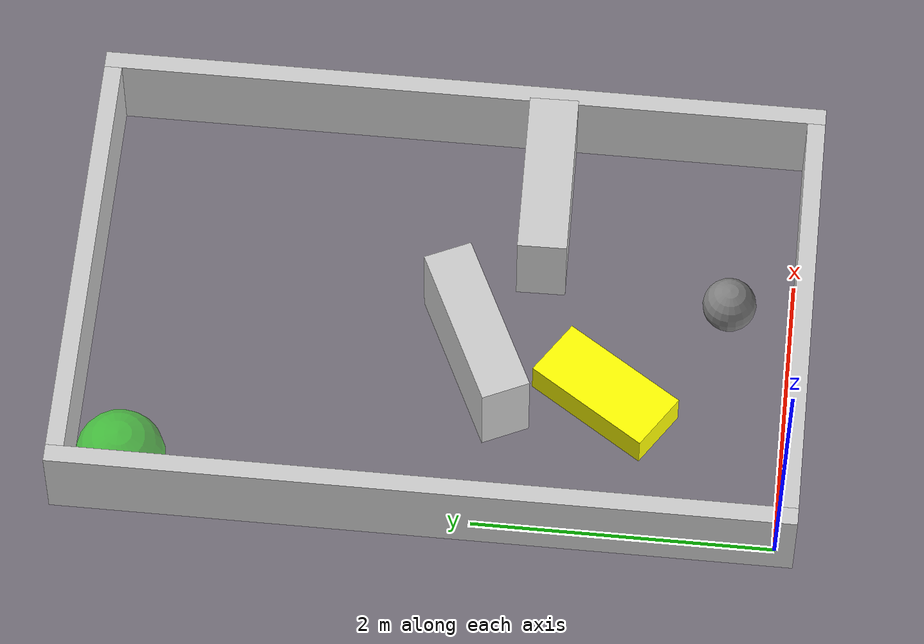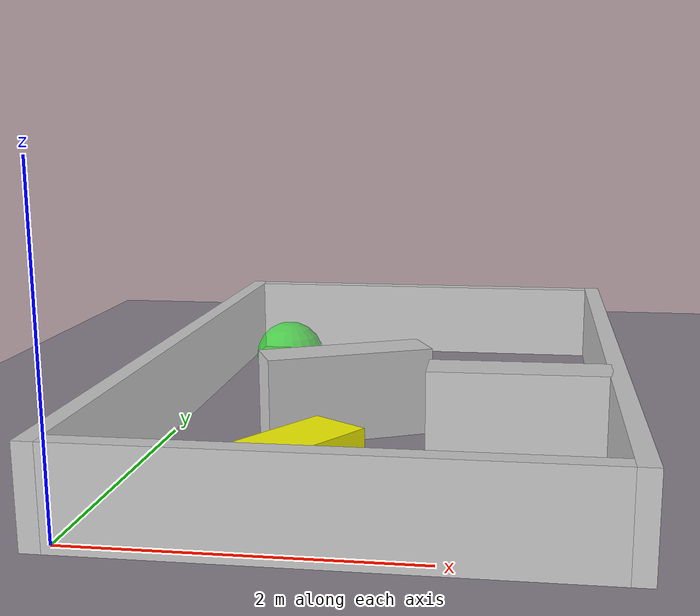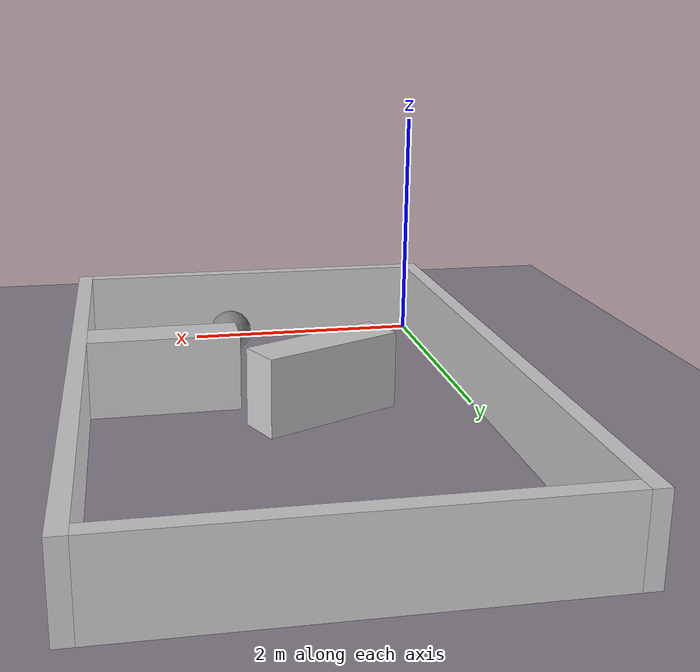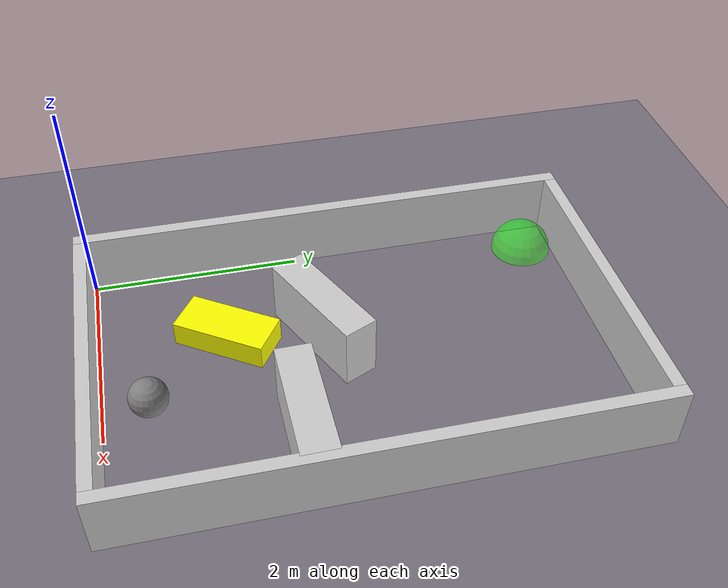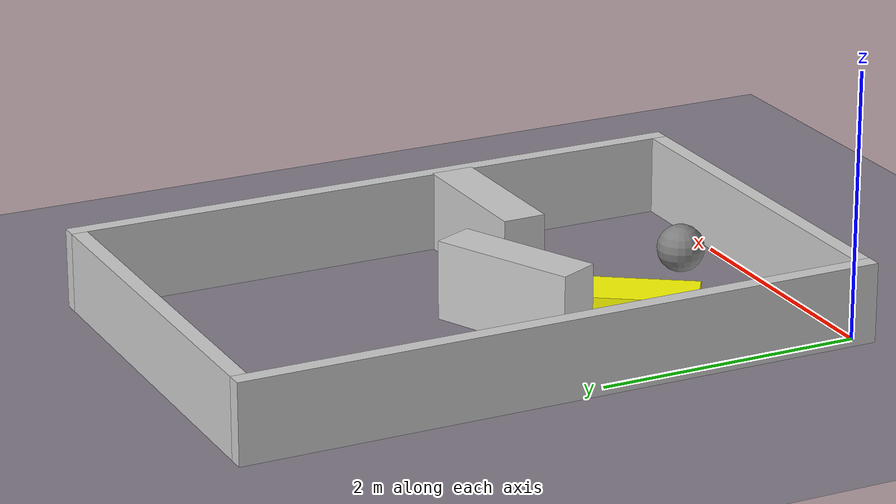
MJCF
<?xml version="1.0" ?>
<mujoco model="generated_environment">
  <option timestep="0.01" integrator="RK4" cone="elliptic"/>
  <default>
    <geom density="1"/>
  </default>
  <asset>
    <texture builtin="gradient" height="3072" rgb1="0.3 0.5 0.7" rgb2="0 0 0" type="skybox" width="512"/>
    <texture builtin="checker" height="300" mark="edge" markrgb="0.8 0.8 0.8" name="groundplane" rgb1="0.2 0.3 0.4" rgb2="0.1 0.2 0.3" type="2d" width="300"/>
    <material name="groundplane" reflectance="0.2" texrepeat="5 5" texture="groundplane" texuniform="true"/>
    <material name="robot" rgba="1.0 1.0 0.0 1.0"/>
  </asset>
  <worldbody>
    <light dir="0 0 -1" directional="true" pos="0 0 1.5"/>
    <geom condim="4" friction="0.5 0.005 0.001" material="groundplane" name="floor" size="0 0 0.05" type="plane"/>
    <body name="walls">
      <geom name="wall_1" condim="4" pos="-0.06 2.325 0.30000000000000004" friction="1 0.005 0.0001" rgba="0.800000011920929 0.800000011920929 0.800000011920929 1.0" size="0.06 2.4450000000000003 0.30000000000000004" type="box"/>
      <geom name="wall_2" condim="4" pos="3.0 2.325 0.30000000000000004" friction="1 0.005 0.0001" rgba="0.800000011920929 0.800000011920929 0.800000011920929 1.0" size="0.06 2.4450000000000003 0.30000000000000004" type="box"/>
      <geom name="wall_3" condim="4" pos="1.47 -0.06 0.30000000000000004" friction="1 0.005 0.0001" rgba="0.800000011920929 0.800000011920929 0.800000011920929 1.0" size="1.47 0.06 0.30000000000000004" type="box"/>
      <geom name="wall_4" condim="4" pos="1.47 4.71 0.30000000000000004" friction="1 0.005 0.0001" rgba="0.800000011920929 0.800000011920929 0.800000011920929 1.0" size="1.47 0.06 0.30000000000000004" type="box"/>
    </body>
    <body name="robot">
      <joint name="joint_x" type="slide" pos="0 0 0" axis="1 0 0"/>
      <joint name="joint_y" type="slide" pos="0 0 0" axis="0 1 0"/>
      <geom name="robot" type="sphere" pos="1.7252864038847977 0.42404898092572296 0.18" size="0.18 0.18 0.18" mass="5.0" friction="1.0 0.005 0.0001" condim="4"/>
    </body>
    <body name="obstacle_1_movable">
      <geom name="obstacle_1_movable" condim="4" pos="1.001840110958812 1.1969730868420958 0.12" quat="0.28966535862872994 0 0 0.9571279851777866" friction="1 0.005 0.0001" rgba="1 1 0 1" size="0.21000000000000002 0.44999999999999996 0.12" type="box" mass="0.1"/>
      <joint type="free"/>
    </body>
    <body name="wall_5">
      <geom name="wall_5" condim="4" pos="1.2023005548599839 2.075316073777082 0.30000000000000004" quat="0.9761903234049558 0 0 0.21691577280255053" friction="1 0.005 0.0001" rgba="0.800000011920929 0.800000011920929 0.800000011920929 1.0" size="0.5700000000000001 0.165 0.30000000000000004" type="box"/>
    </body>
    <body name="wall_6">
      <geom name="wall_6" condim="4" pos="2.3842146742106562 1.70367737968394 0.30000000000000004" quat="0.701738177531481 0 0 0.7124349304987758" friction="1 0.005 0.0001" rgba="0.800000011920929 0.800000011920929 0.800000011920929 1.0" size="0.165 0.585 0.30000000000000004" type="box"/>
    </body>
    <site name="goal" type="sphere" size="0.30000000000000004 0.30000000000000004 0.30000000000000004" rgba="0 1 0 0.5" pos="0.30000000000000004 4.35 0.0"/>
  </worldbody>
  <actuator>
    <velocity name="actuator_x" joint="joint_x" kv="50" ctrlrange="-0.5 0.5" forcerange="-20 20"/>
    <velocity name="actuator_y" joint="joint_y" kv="50" ctrlrange="-0.5 0.5" forcerange="-20 20"/>
  </actuator>
</mujoco>
